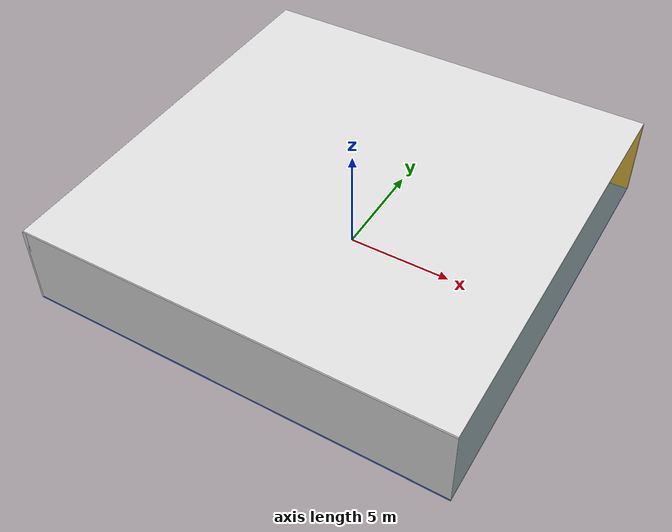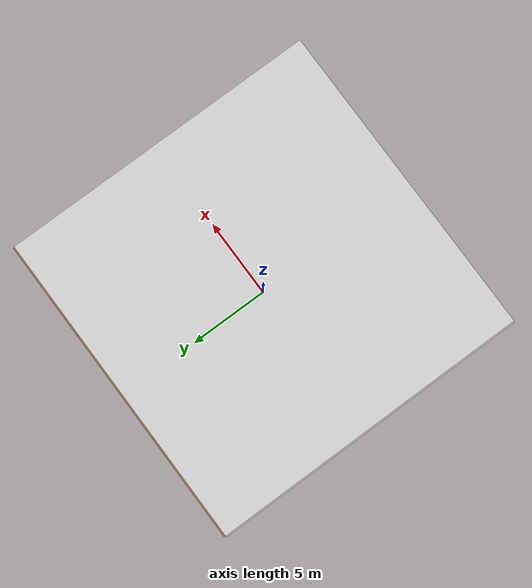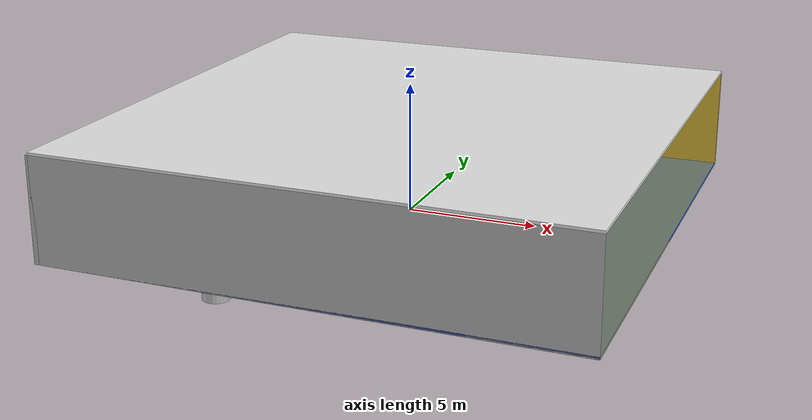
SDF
<sdf version="1.4">
 <world name="default">
  <physics type="ode">
   <max_step_size>0.001</max_step_size>
   <real_time_factor>1</real_time_factor>
   <real_time_update_rate>1000</real_time_update_rate>
   <gravity>0 0 -9.8</gravity>
  </physics>
  <scene><ambient>0.4 0.4 0.4 1</ambient><background>0.7 0.7 0.7 1</background><shadows>1</shadows></scene>
  <model name="Surrounding">
   <static>1</static>
   <link name="Ceiling">
    <collision name="Ceiling_Collision"><geometry><box><size>20 20 0.1</size></box></geometry></collision>
    <visual name="Ceiling_Visual">
     <geometry><box><size>20 20 0.1</size></box></geometry>
     <material>
      <script><uri>file://media/materials/scripts/gazebo.material</uri><name>Gazebo/WhiteGlow</name></script>
     </material>
    </visual>
    <pose>0 0 4.05 0 0 0</pose>
   </link>
   <link name="Wall_South">
    <collision name="Wall_South_Collision">
     <geometry><box><size>20 0 4</size></box></geometry>
     <pose>0 0 2 0 -0 0</pose>
    </collision>
    <visual name="Wall_South_Visual">
     <pose>0 0 2 0 -0 0</pose>
     <geometry><box><size>20 0 4</size></box></geometry>
     <material>
      <script><uri>file://media/materials/scripts/gazebo.material</uri><name>Gazebo/JointAnchor</name></script>
     </material>
    </visual>
    <velocity_decay><linear>0</linear><angular>0</angular></velocity_decay>
    <pose>0 -10 0 0 -0 0</pose>
   </link>
   <link name="Wall_East">
    <collision name="Wall_21_Collision">
     <geometry><box><size>20 0 4</size></box></geometry>
     <pose>0 0 2 0 -0 0</pose>
    </collision>
    <visual name="Wall_21_Visual">
     <pose>0 0 2 0 -0 0</pose>
     <geometry><box><size>20 0 4</size></box></geometry>
     <material>
      <script>
       <uri>file://media/materials/scripts/gazebo.material</uri>
       <name>Gazebo/YellowTransparent</name>
      </script>
     </material>
    </visual>
    <velocity_decay><linear>0</linear><angular>0</angular></velocity_decay>
    <pose>10 0 0 0 -0 1.5708</pose>
   </link>
   <link name="Wall_North">
    <collision name="Wall_22_Collision">
     <geometry><box><size>20 0.2 4</size></box></geometry>
     <pose>0 0 2 0 -0 0</pose>
    </collision>
    <visual name="Wall_22_Visual">
     <pose>0 0 2 0 -0 0</pose>
     <geometry><box><size>20 0.2 4</size></box></geometry>
     <material>
      <script><uri>file://media/materials/scripts/gazebo.material</uri><name>Gazebo/WoodFloor</name></script>
     </material>
    </visual>
    <velocity_decay><linear>0</linear><angular>0</angular></velocity_decay>
    <pose>0 10 0 0 -0 0</pose>
   </link>
   <link name="Wall_West">
    <collision name="Wall_23_Collision">
     <geometry><box><size>20 0.2 4</size></box></geometry>
     <pose>0 0 2 0 -0 0</pose>
    </collision>
    <visual name="Wall_23_Visual">
     <pose>0 0 2 0 -0 0</pose>
     <geometry><box><size>20 0.2 4</size></box></geometry>
     <material>
      <script><uri>file://media/materials/scripts/gazebo.material</uri><name>Gazebo/JointAnchor</name></script>
     </material>
    </visual>
    <velocity_decay><linear>0</linear><angular>0</angular></velocity_decay>
    <pose>-10 0 0 0 0 -1.5708</pose>
   </link>
   <link name="Ground_link">
    <collision name="collision">
     <pose>0 0 .05 0 -0 0</pose>
     <geometry><box><size>20 20 0.1</size></box></geometry>
    </collision>
    <visual name="visual">
     <pose>0 0 .05 0 -0 0</pose>
     <geometry><box><size>20 20 0.1</size></box></geometry>
     <material>
      <script><uri>file://media/materials/scripts/gazebo.material</uri><name>Gazebo/BlueGlow</name></script>
     </material>
    </visual>
   </link>
   <static>1</static>
  </model>
  <spherical_coordinates>
   <surface_model>EARTH_WGS84</surface_model>
   <latitude_deg>0</latitude_deg>
   <longitude_deg>0</longitude_deg>
   <elevation>0</elevation>
   <heading_deg>0</heading_deg>
  </spherical_coordinates>
  <light name="lightball_0" type="diffuse">
   <diffuse>0.8 0.8 0.8 1</diffuse>
   <specular>0.2 0.2 0.2 1</specular>
   <attenuation>
    <range>100</range>
    <constant>0.7</constant>
    <linear>0.01</linear>
    <quadratic>0.001</quadratic>
   </attenuation>
   <direction>-0.5 0.1 -0.9</direction>
   <pose>-9.63259401744 -5.15874511704 2.78731083645 0 0 0</pose>
  </light>
  <light name="lightball_1" type="diffuse">
   <diffuse>0.8 0.8 0.8 1</diffuse>
   <specular>0.2 0.2 0.2 1</specular>
   <attenuation>
    <range>100</range>
    <constant>0.7</constant>
    <linear>0.01</linear>
    <quadratic>0.001</quadratic>
   </attenuation>
   <direction>-0.5 0.1 -0.9</direction>
   <pose>6.79074049273 1.25580470686 0.524971077191 0 0 0</pose>
  </light>
  <light name="lightball_2" type="diffuse">
   <diffuse>0.8 0.8 0.8 1</diffuse>
   <specular>0.2 0.2 0.2 1</specular>
   <attenuation>
    <range>100</range>
    <constant>0.7</constant>
    <linear>0.01</linear>
    <quadratic>0.001</quadratic>
   </attenuation>
   <direction>-0.5 0.1 -0.9</direction>
   <pose>2.13147354007 6.22279277622 1.20242062168 0 0 0</pose>
  </light>
  <include>
   <uri>model://robocup_3Dsim_goal</uri>
   <pose>-6.48965137911 -8.63944524312 0 0 0 0.975853292484</pose>
  </include>
  <include><uri>model://table</uri><pose>-3.52812536414 5.28386338075 0 0 0 1.77809511424</pose></include>
  <include>
   <uri>model://textured_shapes</uri>
   <pose>-2.59979915692 -7.90824699429 0 0 0 2.6086677834</pose>
  </include>
  <include><uri>model://cabinet</uri><pose>-0.973769702296 7.97467702668 0 0 0 1.10234115273</pose></include>
  <include>
   <uri>model://construction_cone</uri>
   <pose>1.24599903941 -7.65723806315 0 0 0 0.681769688802</pose>
  </include>
  <include><uri>model://cabinet</uri><pose>4.14315235137 6.61833159844 0 0 0 0.0949237917918</pose></include>
 </world>
</sdf>

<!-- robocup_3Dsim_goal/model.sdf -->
<sdf version="1.5">
  <model name="robocup_3d_goal">
    <static>true</static>
    <link name="left_post">
      <pose>0 1.05 0.45 0 0 0</pose>
      <collision name="collision">
        <geometry>
          <cylinder>
            <radius>0.05</radius>
            <length>0.9</length>
          </cylinder>
        </geometry>
      </collision>
      <visual name="visual">
        <geometry>
          <cylinder>
            <radius>0.05</radius>
            <length>0.9</length>
          </cylinder>
        </geometry>
        <material>
          <script>
            <uri>file://media/materials/scripts/gazebo.material</uri>
            <name>Gazebo/ZincYellow</name>
          </script>
        </material>
      </visual>
    </link>
    <link name="left_support_horiz_lower">
      <pose>0.30 1.05 0.01 0 0 0</pose>
      <collision name="collision">
        <geometry>
          <box>
            <size>0.50 0.02 0.02</size>
          </box>
        </geometry>
      </collision>
      <visual name="visual">
        <geometry>
          <box>
            <size>0.50 0.02 0.02</size>
          </box>
        </geometry>
        <material>
          <script>
            <uri>file://media/materials/scripts/gazebo.material</uri>
            <name>Gazebo/White</name>
          </script>
        </material>
      </visual>
    </link>
    <link name="left_support_horiz_upper">
      <pose>0.30 1.05 0.79 0 0 0</pose>
      <collision name="collision">
        <geometry>
          <box>
            <size>0.50 0.02 0.02</size>
          </box>
        </geometry>
      </collision>
      <visual name="visual">
        <geometry>
          <box>
            <size>0.50 0.02 0.02</size>
          </box>
        </geometry>
        <material>
          <script>
            <uri>file://media/materials/scripts/gazebo.material</uri>
            <name>Gazebo/White</name>
          </script>
        </material>
      </visual>
    </link>
    <link name="left_support_vertical">
      <pose>0.56 1.05 0.4 0 1.5708 0</pose>
      <collision name="collision">
        <geometry>
          <box>
            <size>0.80 0.02 0.02</size>
          </box>
        </geometry>
      </collision>
      <visual name="visual">
        <geometry>
          <box>
            <size>0.80 0.02 0.02</size>
          </box>
        </geometry>
        <material>
          <script>
            <uri>file://media/materials/scripts/gazebo.material</uri>
            <name>Gazebo/White</name>
          </script>
        </material>
      </visual>
    </link>
    <link name="right_support_horiz_lower">
      <pose>0.30 -1.05 0.01 0 0 0</pose>
      <collision name="collision">
        <geometry>
          <box>
            <size>0.50 0.02 0.02</size>
          </box>
        </geometry>
      </collision>
      <visual name="visual">
        <geometry>
          <box>
            <size>0.50 0.02 0.02</size>
          </box>
        </geometry>
        <material>
          <script>
            <uri>file://media/materials/scripts/gazebo.material</uri>
            <name>Gazebo/White</name>
          </script>
        </material>
      </visual>
    </link>
    <link name="right_support_horiz_upper">
      <pose>0.30 -1.05 0.79 0 0 0</pose>
      <collision name="collision">
        <geometry>
          <box>
            <size>0.50 0.02 0.02</size>
          </box>
        </geometry>
      </collision>
      <visual name="visual">
        <geometry>
          <box>
            <size>0.50 0.02 0.02</size>
          </box>
        </geometry>
        <material>
          <script>
            <uri>file://media/materials/scripts/gazebo.material</uri>
            <name>Gazebo/White</name>
          </script>
        </material>
      </visual>
    </link>
    <link name="right_support_vertical">
      <pose>0.56 -1.05 0.4 0 1.5708 0</pose>
      <collision name="collision">
        <geometry>
          <box>
            <size>0.80 0.02 0.02</size>
          </box>
        </geometry>
      </collision>
      <visual name="visual">
        <geometry>
          <box>
            <size>0.80 0.02 0.02</size>
          </box>
        </geometry>
        <material>
          <script>
            <uri>file://media/materials/scripts/gazebo.material</uri>
            <name>Gazebo/White</name>
          </script>
        </material>
      </visual>
    </link>
    <link name="center_support_horiz_lower">
      <pose>0.56 0 0.01 0 1.5708 0</pose>
      <collision name="collision">
        <geometry>
          <box>
            <size>0.02 2.08 0.02</size>
          </box>
        </geometry>
      </collision>
      <visual name="visual">
        <geometry>
          <box>
            <size>0.02 2.08 0.02</size>
          </box>
        </geometry>
        <material>
          <script>
            <uri>file://media/materials/scripts/gazebo.material</uri>
            <name>Gazebo/White</name>
          </script>
        </material>
      </visual>
    </link>
    <link name="center_support_horiz_upper">
      <pose>0.56 0 0.79 0 1.5708 0</pose>
      <collision name="collision">
        <geometry>
          <box>
            <size>0.02 2.08 0.02</size>
          </box>
        </geometry>
      </collision>
      <visual name="visual">
        <geometry>
          <box>
            <size>0.02 2.08 0.02</size>
          </box>
        </geometry>
        <material>
          <script>
            <uri>file://media/materials/scripts/gazebo.material</uri>
            <name>Gazebo/White</name>
          </script>
        </material>
      </visual>
    </link>
    <link name="right_post">
      <pose>0 -1.05 0.45 0 0 0</pose>
      <collision name="collision">
        <geometry>
          <cylinder>
            <radius>0.05</radius>
            <length>0.9</length>
          </cylinder>
        </geometry>
      </collision>
      <visual name="visual">
        <geometry>
          <cylinder>
            <radius>0.05</radius>
            <length>0.9</length>
          </cylinder>
        </geometry>
        <material>
          <script>
            <uri>file://media/materials/scripts/gazebo.material</uri>
            <name>Gazebo/ZincYellow</name>
          </script>
        </material>
      </visual>
    </link>
    <link name="crossbar">
      <pose>0 0 0.85 1.57 1.57 0</pose>
      <collision name="collision">
        <geometry>
          <cylinder>
            <radius>0.05</radius>
            <length>2.0</length>
          </cylinder>
        </geometry>
      </collision>
      <visual name="visual">
        <geometry>
          <cylinder>
            <radius>0.05</radius>
            <length>2.0</length>
          </cylinder>
        </geometry>
        <material>
          <script>
            <uri>file://media/materials/scripts/gazebo.material</uri>
            <name>Gazebo/ZincYellow</name>
          </script>
        </material>
      </visual>
    </link>
    <link name="center_net">
      <pose>0.56 0 0.40 0 0 0</pose>
      <collision name="collision">
        <geometry>
          <box>
            <size>0.01 2.1 0.80</size>
          </box>
        </geometry>
      </collision>
      <visual name="visual">
        <geometry>
          <box>
            <size>0.01 2.1 0.80</size>
          </box>
        </geometry>
        <material>
          <script>
            <uri>model://../model_source/models/robocup09_spl_field/materials/scripts/</uri>
            <uri>model://../model_source/models/robocup09_spl_field/materials/textures/</uri>
            <name>RoboCup/Net</name>
          </script>
        </material>
      </visual>
    </link>
    <link name="left_net">
      <pose>0.30 1.05 0.40 0 0 0</pose>
      <collision name="collision">
        <geometry>
          <box>
            <size>0.50 0.01 0.76</size>
          </box>
        </geometry>
      </collision>
      <visual name="visual">
        <geometry>
          <box>
            <size>0.50 0.01 0.76</size>
          </box>
        </geometry>
        <material>
          <script>
            <uri>model://../model_source/models/robocup09_spl_field/materials/scripts/</uri>
            <uri>model://../model_source/models/robocup09_spl_field/materials/textures/</uri>
            <name>RoboCup/Net</name>
          </script>
        </material>
      </visual>
    </link>
    <link name="right_net">
      <pose>0.30 -1.05 0.40 0 0 0</pose>
      <collision name="collision">
        <geometry>
          <box>
            <size>0.50 0.01 0.76</size>
          </box>
        </geometry>
      </collision>
      <visual name="visual">
        <geometry>
          <box>
            <size>0.50 0.01 0.76</size>
          </box>
        </geometry>
        <material>
          <script>
            <uri>model://../model_source/models/robocup09_spl_field/materials/scripts/</uri>
            <uri>model://../model_source/models/robocup09_spl_field/materials/textures/</uri>
            <name>RoboCup/Net</name>
          </script>
        </material>
      </visual>
    </link>
  </model>
</sdf>

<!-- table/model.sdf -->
<sdf version="1.5">
  <model name="table">
    <static>true</static>
    <link name="link">
      <collision name="surface">
        <pose>0 0 1.0 0 0 0</pose>
        <geometry>
          <box>
            <size>1.5 0.8 0.03</size>
          </box>
        </geometry>
        <surface>
          <friction>
            <ode>
              <mu>0.6</mu>
              <mu2>0.6</mu2>
            </ode>
          </friction>
        </surface>
      </collision>
      <visual name="visual1">
        <pose>0 0 1.0 0 0 0</pose>
        <geometry>
          <box>
            <size>1.5 0.8 0.03</size>
          </box>
        </geometry>
        <material>
          <script>
            <uri>model://media/materials/scripts/gazebo.material</uri>
            <name>Gazebo/Wood</name>
          </script>
        </material>
      </visual>
      <collision name="front_left_leg">
        <pose>0.68 0.38 0.5 0 0 0</pose>
        <geometry>
          <cylinder>
            <radius>0.02</radius>
            <length>1.0</length>
          </cylinder>
        </geometry>
      </collision>
      <visual name="front_left_leg">
        <pose>0.68 0.38 0.5 0 0 0</pose>
        <geometry>
          <cylinder>
            <radius>0.02</radius>
            <length>1.0</length>
          </cylinder>
        </geometry>
        <material>
          <script>
            <uri>model://media/materials/scripts/gazebo.material</uri>
            <name>Gazebo/Grey</name>
          </script>
        </material>
      </visual>
      <collision name="front_right_leg">
        <pose>0.68 -0.38 0.5 0 0 0</pose>
        <geometry>
          <cylinder>
            <radius>0.02</radius>
            <length>1.0</length>
          </cylinder>
        </geometry>
      </collision>
      <visual name="front_right_leg">
        <pose>0.68 -0.38 0.5 0 0 0</pose>
        <geometry>
          <cylinder>
            <radius>0.02</radius>
            <length>1.0</length>
          </cylinder>
        </geometry>
        <material>
          <script>
            <uri>model://media/materials/scripts/gazebo.material</uri>
            <name>Gazebo/Grey</name>
          </script>
        </material>
      </visual>
      <collision name="back_right_leg">
        <pose>-0.68 -0.38 0.5 0 0 0</pose>
        <geometry>
          <cylinder>
            <radius>0.02</radius>
            <length>1.0</length>
          </cylinder>
        </geometry>
      </collision>
      <visual name="back_right_leg">
        <pose>-0.68 -0.38 0.5 0 0 0</pose>
        <geometry>
          <cylinder>
            <radius>0.02</radius>
            <length>1.0</length>
          </cylinder>
        </geometry>
        <material>
          <script>
            <uri>model://media/materials/scripts/gazebo.material</uri>
            <name>Gazebo/Grey</name>
          </script>
        </material>
      </visual>
      <collision name="back_left_leg">
        <pose>-0.68 0.38 0.5 0 0 0</pose>
        <geometry>
          <cylinder>
            <radius>0.02</radius>
            <length>1.0</length>
          </cylinder>
        </geometry>
      </collision>
      <visual name="back_left_leg">
        <pose>-0.68 0.38 0.5 0 0 0</pose>
        <geometry>
          <cylinder>
            <radius>0.02</radius>
            <length>1.0</length>
          </cylinder>
        </geometry>
        <material>
          <script>
            <uri>model://media/materials/scripts/gazebo.material</uri>
            <name>Gazebo/Grey</name>
          </script>
        </material>
      </visual>
    </link>
  </model>
</sdf>

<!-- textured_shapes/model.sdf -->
<sdf version="1.6">
  <model name="textured_shapes">
    <pose>0 0 0.5 0 0 0</pose>
    <link name="box">
      <pose>0 -1.5 0 0 0 0</pose>
      <collision name="collision">
        <geometry>
          <box>
            <size>1 1 1</size>
          </box>
        </geometry>
      </collision>
      <visual name="visual">
        <geometry>
          <box>
            <size>1 1 1</size>
          </box>
        </geometry>
        <material>
          <script>
            <uri>model://../model_source/models/textured_shapes/materials/scripts</uri>
            <uri>model://../model_source/models/textured_shapes/materials/textures</uri>
            <name>TexturedShape/Squares</name>
          </script>
        </material>
      </visual>
    </link>
    <link name="sphere">
      <collision name="collision">
        <geometry>
          <sphere>
            <radius>0.5</radius>
          </sphere>
        </geometry>
      </collision>
      <visual name="visual">
        <geometry>
          <sphere>
            <radius>0.5</radius>
          </sphere>
        </geometry>
        <material>
          <script>
            <uri>model://../model_source/models/textured_shapes/materials/scripts</uri>
            <uri>model://../model_source/models/textured_shapes/materials/textures</uri>
            <name>TexturedShape/Squares</name>
          </script>
        </material>
      </visual>
    </link>
    <link name="cylinder">
      <pose>0 1.5 0 0 0 0</pose>
      <collision name="collision">
        <geometry>
          <cylinder>
            <radius>0.5</radius>
            <length>1</length>
          </cylinder>
        </geometry>
      </collision>
      <visual name="visual">
        <geometry>
          <cylinder>
            <radius>0.5</radius>
            <length>1</length>
          </cylinder>
        </geometry>
        <material>
          <script>
            <uri>model://../model_source/models/textured_shapes/materials/scripts</uri>
            <uri>model://../model_source/models/textured_shapes/materials/textures</uri>
            <name>TexturedShape/Squares</name>
          </script>
        </material>
      </visual>
    </link>
  </model>
</sdf>

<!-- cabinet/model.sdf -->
<sdf version="1.5">
  <model name="cabinet">
    <static>true</static>
    <link name="cabinet_bottom_plate">
      <inertial>
        <pose>0 0 -1 0 0 0</pose>
        <inertia>
          <ixx>2.050000</ixx>
          <ixy>0</ixy>
          <ixz>0</ixz>
          <iyy>2.050000</iyy>
          <iyz>0</iyz>
          <izz>2.050000</izz>
        </inertia>
        <mass>25.000000</mass>
      </inertial>
      <collision name="cabinet_bottom_plate_geom">
        <pose>0 0 0.010000 0 0 0</pose>
        <geometry>
          <box>
            <size>0.450000 0.450000 0.020000</size>
          </box>
        </geometry>
      </collision>
      <visual name="cabinet_bottom_plate_geom_visual">
        <pose>0 0 0.010000 0 0 0</pose>
        <geometry>
          <box>
            <size>0.450000 0.450000 0.020000</size>
          </box>
        </geometry>
        <material>
          <script>
            <uri>model://media/materials/scripts/gazebo.material</uri>
            <name>Gazebo/Wood</name>
          </script>
        </material>
      </visual>
      <collision name="cabinet_bottom_plate_geom_cabinet_back_plate">
        <pose>0.235000 0 0.510000 0 0 0</pose>
        <geometry>
          <box>
            <size>0.020000 0.450000 1.020000</size>
          </box>
        </geometry>
      </collision>
      <visual name="cabinet_bottom_plate_geom_cabinet_back_plate_visual">
        <pose>0.235000 0 0.510000 0 0 0</pose>
        <geometry>
          <box>
            <size>0.020000 0.450000 1.020000</size>
          </box>
        </geometry>
        <material>
          <script>
            <uri>model://media/materials/scripts/gazebo.material</uri>
            <name>Gazebo/Wood</name>
          </script>
        </material>
      </visual>
      <collision name="cabinet_bottom_plate_geom_cabinet_left_plate">
        <pose>0 0.235000 0.510000 0 0 0</pose>
        <geometry>
          <box>
            <size>0.450000 0.020000 1.020000</size>
          </box>
        </geometry>
      </collision>
      <visual name="cabinet_bottom_plate_geom_cabinet_left_plate_visual">
        <pose>0 0.235000 0.510000 0 0 0</pose>
        <geometry>
          <box>
            <size>0.450000 0.020000 1.020000</size>
          </box>
        </geometry>
        <material>
          <script>
            <uri>model://media/materials/scripts/gazebo.material</uri>
            <name>Gazebo/Wood</name>
          </script>
        </material>
      </visual>
      <collision name="cabinet_bottom_plate_geom_cabinet_middle_plate">
        <pose>0 0 0.510000 0 0 0</pose>
        <geometry>
          <box>
            <size>0.450000 0.450000 0.020000</size>
          </box>
        </geometry>
      </collision>
      <visual name="cabinet_bottom_plate_geom_cabinet_middle_plate_visual">
        <pose>0 0 0.510000 0 0 0</pose>
        <geometry>
          <box>
            <size>0.450000 0.450000 0.020000</size>
          </box>
        </geometry>
        <material>
          <script>
            <uri>model://media/materials/scripts/gazebo.material</uri>
            <name>Gazebo/Wood</name>
          </script>
        </material>
      </visual>
      <collision name="cabinet_bottom_plate_geom_cabinet_right_plate">
        <pose>0 -0.235000 0.510000 0 0 0</pose>
        <geometry>
          <box>
            <size>0.450000 0.020000 1.020000</size>
          </box>
        </geometry>
      </collision>
      <visual name="cabinet_bottom_plate_geom_cabinet_right_plate_visual">
        <pose>0 -0.235000 0.510000 0 0 0</pose>
        <geometry>
          <box>
            <size>0.450000 0.020000 1.020000</size>
          </box>
        </geometry>
        <material>
          <script>
            <uri>model://media/materials/scripts/gazebo.material</uri>
            <name>Gazebo/Wood</name>
          </script>
        </material>
      </visual>
      <collision name="cabinet_bottom_plate_geom_cabinet_top_plate">
        <pose>0 0 1.010000 0 0 0</pose>
        <geometry>
          <box>
            <size>0.450000 0.450000 0.020000</size>
          </box>
        </geometry>
      </collision>
      <visual name="cabinet_bottom_plate_geom_cabinet_top_plate_visual">
        <pose>0 0 1.010000 0 0 0</pose>
        <geometry>
          <box>
            <size>0.450000 0.450000 0.020000</size>
          </box>
        </geometry>
        <material>
          <script>
            <uri>model://media/materials/scripts/gazebo.material</uri>
            <name>Gazebo/Wood</name>
          </script>
        </material>
      </visual>
    </link>
  </model>
</sdf>

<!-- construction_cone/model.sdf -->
<sdf version="1.5">
  <model name="Construction Cone">
    <link name="link">
      <collision name="collision">
        <geometry>
          <mesh>
            <scale>10 10 10</scale>
            <uri>file://isr-testbed/construction_cone/meshes/construction_cone.dae</uri>
          </mesh>
        </geometry>
      </collision>
      <visual name="visual">
        <geometry>
          <mesh>
            <scale>10 10 10</scale>
            <uri>file://isr-testbed/construction_cone/meshes/construction_cone.dae</uri>
          </mesh>
        </geometry>
      </visual>
    </link>
  </model>
</sdf>
